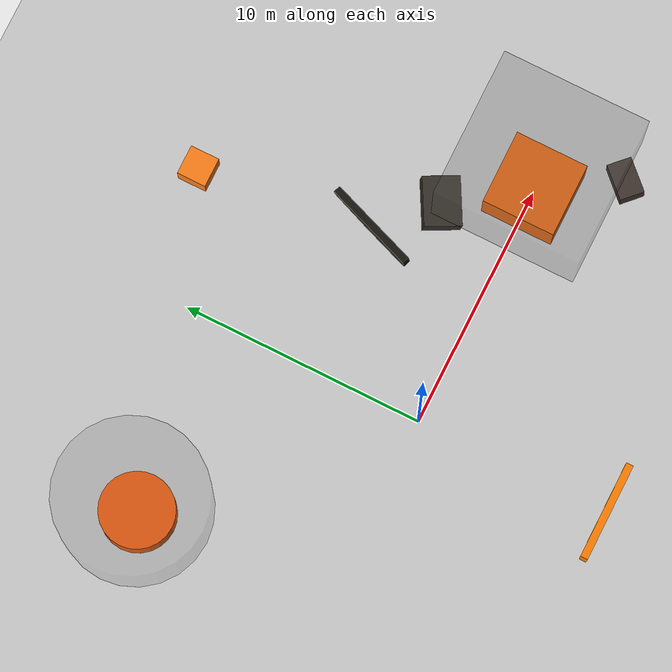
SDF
<sdf version="1.5">
 <world name="fire_scene_simple">
  <include><uri>model://sun</uri></include>
  <include><uri>model://ground_plane</uri></include>
  <physics name="default_physics" default="0" type="ode">
   <gravity>0 0 -9.8066</gravity>
   <max_step_size>0.004</max_step_size>
   <real_time_factor>1</real_time_factor>
   <real_time_update_rate>250</real_time_update_rate>
  </physics>
  <model name="fire_1">
   <static>true</static>
   <pose>10 0 1 0 0 0</pose>
   <link name="link">
    <visual name="core">
     <geometry><box><size>3 3 2</size></box></geometry>
     <material><ambient>1 0.3 0 1</ambient><diffuse>1 0.4 0 1</diffuse><emissive>1 0.5 0 1</emissive></material>
    </visual>
   </link>
  </model>
  <model name="fire_1_top">
   <static>true</static>
   <pose>10 0 2.5 0 0 0</pose>
   <link name="link">
    <visual name="glow">
     <geometry><box><size>2 2 1</size></box></geometry>
     <material>
      <ambient>1 0.6 0.1 0.8</ambient>
      <diffuse>1 0.7 0.2 0.8</diffuse>
      <emissive>1 0.8 0.3 1</emissive>
     </material>
    </visual>
   </link>
  </model>
  <model name="fire_2">
   <static>true</static>
   <pose>-8 8 0.7 0 0 0</pose>
   <link name="link">
    <visual name="core">
     <geometry><cylinder><radius>1.5</radius><length>1.4</length></cylinder></geometry>
     <material><ambient>1 0.25 0 1</ambient><diffuse>1 0.35 0 1</diffuse><emissive>1 0.45 0 1</emissive></material>
    </visual>
   </link>
  </model>
  <model name="fire_2_top">
   <static>true</static>
   <pose>-8 8 1.8 0 0 0</pose>
   <link name="link">
    <visual name="glow">
     <geometry><cylinder><radius>1</radius><length>0.8</length></cylinder></geometry>
     <material>
      <ambient>1 0.7 0.2 0.7</ambient>
      <diffuse>1 0.8 0.3 0.7</diffuse>
      <emissive>1 0.9 0.4 1</emissive>
     </material>
    </visual>
   </link>
  </model>
  <model name="fire_3">
   <static>true</static>
   <pose>5 12 0.5 0 0 0</pose>
   <link name="link">
    <visual name="core">
     <geometry><box><size>1.2 1.2 1</size></box></geometry>
     <material>
      <ambient>1 0.4 0 1</ambient>
      <diffuse>1 0.5 0.1 1</diffuse>
      <emissive>1 0.6 0.2 1</emissive>
     </material>
    </visual>
   </link>
  </model>
  <model name="smoke_1">
   <static>true</static>
   <pose>10 0 5 0 0 0</pose>
   <link name="link">
    <visual name="smoke">
     <geometry><box><size>6 6 4</size></box></geometry>
     <material><ambient>0.3 0.3 0.3 0.25</ambient><diffuse>0.35 0.35 0.35 0.25</diffuse></material>
    </visual>
   </link>
  </model>
  <model name="smoke_2">
   <static>true</static>
   <pose>-8 8 4 0 0 0</pose>
   <link name="link">
    <visual name="smoke">
     <geometry><cylinder><radius>3</radius><length>4</length></cylinder></geometry>
     <material><ambient>0.35 0.35 0.35 0.2</ambient><diffuse>0.4 0.4 0.4 0.2</diffuse></material>
    </visual>
   </link>
  </model>
  <model name="debris_1">
   <static>true</static>
   <pose>8 3 0.4 0.1 0 0.5</pose>
   <link name="link">
    <collision name="col"><geometry><box><size>2 1.5 0.8</size></box></geometry></collision>
    <visual name="vis">
     <geometry><box><size>2 1.5 0.8</size></box></geometry>
     <material><ambient>0.2 0.18 0.15 1</ambient></material>
    </visual>
   </link>
  </model>
  <model name="debris_2">
   <static>true</static>
   <pose>12 -3 0.3 0 0.1 0.8</pose>
   <link name="link">
    <collision name="col"><geometry><box><size>1.5 1 0.6</size></box></geometry></collision>
    <visual name="vis">
     <geometry><box><size>1.5 1 0.6</size></box></geometry>
     <material><ambient>0.25 0.2 0.18 1</ambient></material>
    </visual>
   </link>
  </model>
  <model name="burned_beam">
   <static>true</static>
   <pose>6 5 0.25 0 0.15 1.2</pose>
   <link name="link">
    <collision name="col"><geometry><box><size>4 0.3 0.5</size></box></geometry></collision>
    <visual name="vis">
     <geometry><box><size>4 0.3 0.5</size></box></geometry>
     <material><ambient>0.1 0.08 0.06 1</ambient></material>
    </visual>
   </link>
  </model>
  <model name="barrier_1">
   <static>true</static>
   <pose>0 -8 0.5 0 0 0</pose>
   <link name="link">
    <collision name="col"><geometry><box><size>4 0.3 1</size></box></geometry></collision>
    <visual name="vis">
     <geometry><box><size>4 0.3 1</size></box></geometry>
     <material><ambient>1 0.5 0 1</ambient></material>
    </visual>
   </link>
  </model>
 </world>
</sdf>
